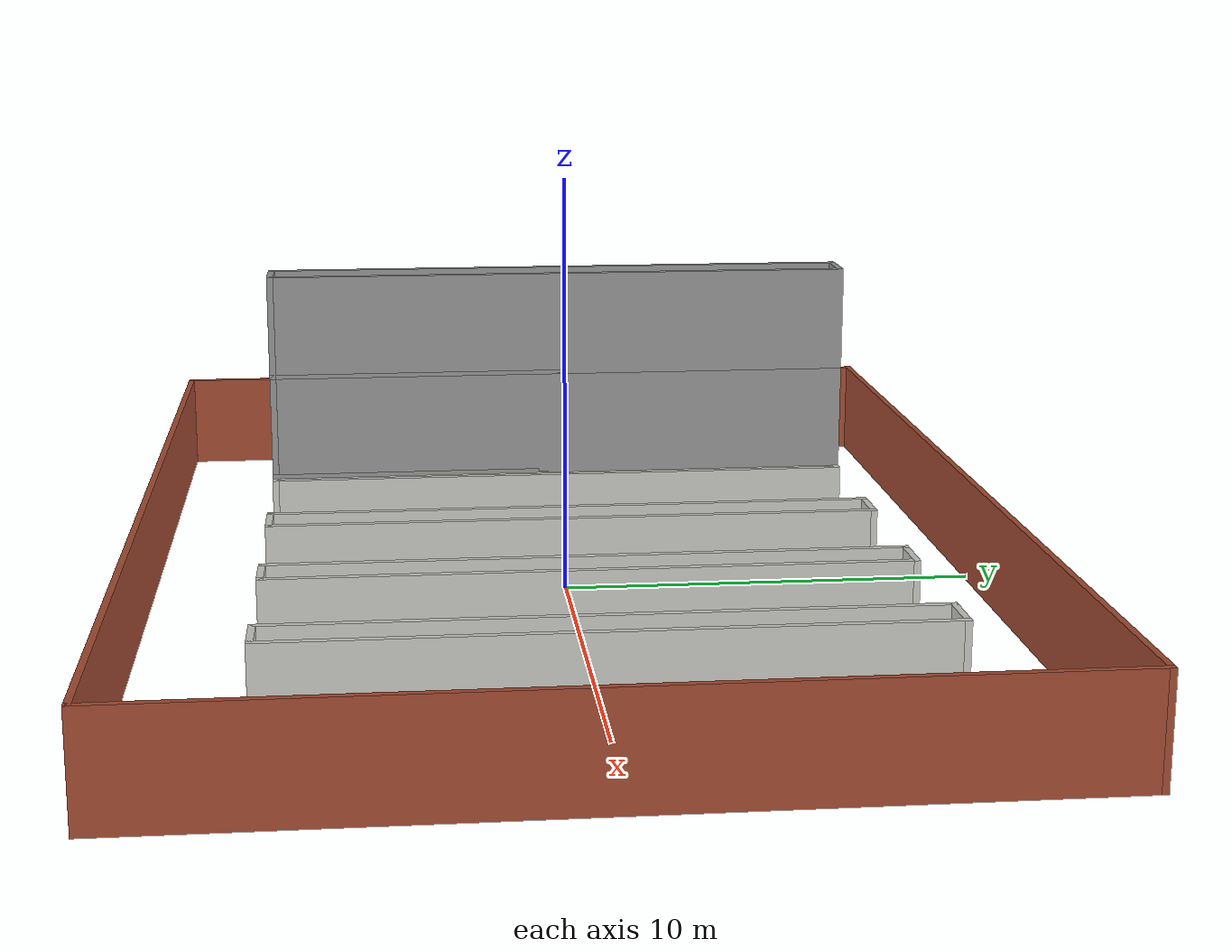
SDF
<?xml version='1.0'?>
<sdf version='1.6'>
  <model name='CommissaryBuilding'>
    <pose frame=''>0 0 0 0 -0 0</pose>
    <link name='Floor_0'>
      <collision name='Floor_0_Collision'>
        <geometry>
          <box>
            <size>1.15 14.15 0.1</size>
          </box>
        </geometry>
        <pose frame=''>0 0 0.05 0 -0 0</pose>
      </collision>
      <visual name='Floor_0_Visual'>
        <pose frame=''>0 0 0.05 0 -0 0</pose>
        <geometry>
          <box>
            <size>1.15 14.15 0.1</size>
          </box>
        </geometry>
        <material>
          <script>
            <uri>file://media/materials/scripts/gazebo.material</uri>
            <name>Gazebo/Grey</name>
          </script>
          <ambient>1 1 1 1</ambient>
        </material>
        <meta>
          <layer>1</layer>
        </meta>
      </visual>
      <pose frame=''>-2.25 0 2.5 0 -0 0</pose>
    </link>
    <link name='Floor_1'>
      <collision name='Floor_1_Collision'>
        <geometry>
          <box>
            <size>1.15 14.15 0.1</size>
          </box>
        </geometry>
        <pose frame=''>0 0 0.05 0 -0 0</pose>
      </collision>
      <visual name='Floor_1_Visual'>
        <pose frame=''>0 0 0.05 0 -0 0</pose>
        <geometry>
          <box>
            <size>1.15 14.15 0.1</size>
          </box>
        </geometry>
        <material>
          <script>
            <uri>file://media/materials/scripts/gazebo.material</uri>
            <name>Gazebo/Grey</name>
          </script>
          <ambient>1 1 1 1</ambient>
        </material>
        <meta>
          <layer>2</layer>
        </meta>
      </visual>
      <pose frame=''>-2.25 0 5 0 -0 0</pose>
    </link>
    <link name='Wall_11'>
      <collision name='Wall_11_Collision'>
        <geometry>
          <box>
            <size>14.15 0.15 2.5</size>
          </box>
        </geometry>
        <pose frame=''>0 0 1.25 0 -0 0</pose>
      </collision>
      <visual name='Wall_11_Visual'>
        <pose frame=''>0 0 1.25 0 -0 0</pose>
        <geometry>
          <box>
            <size>14.15 0.15 2.5</size>
          </box>
        </geometry>
        <material>
          <script>
            <uri>file://media/materials/scripts/gazebo.material</uri>
            <name>Gazebo/CeilingTiled</name>
          </script>
          <ambient>0.921569 0.807843 0.615686 1</ambient>
        </material>
        <meta>
          <layer>0</layer>
        </meta>
      </visual>
      <pose frame=''>-2.5 0 0 0 -0 1.5708</pose>
    </link>
    <link name='Wall_12'>
      <collision name='Wall_12_Collision'>
        <geometry>
          <box>
            <size>1.15 0.15 2.5</size>
          </box>
        </geometry>
        <pose frame=''>0 0 1.25 0 -0 0</pose>
      </collision>
      <visual name='Wall_12_Visual'>
        <pose frame=''>0 0 1.25 0 -0 0</pose>
        <geometry>
          <box>
            <size>1.15 0.15 2.5</size>
          </box>
        </geometry>
        <material>
          <script>
            <uri>file://media/materials/scripts/gazebo.material</uri>
            <name>Gazebo/CeilingTiled</name>
          </script>
          <ambient>0.921569 0.807843 0.615686 1</ambient>
        </material>
        <meta>
          <layer>0</layer>
        </meta>
      </visual>
      <pose frame=''>-2 7 0 0 -0 0</pose>
    </link>
    <link name='Wall_13'>
      <collision name='Wall_13_Collision'>
        <geometry>
          <box>
            <size>14.15 0.15 2.5</size>
          </box>
        </geometry>
        <pose frame=''>0 0 1.25 0 -0 0</pose>
      </collision>
      <visual name='Wall_13_Visual'>
        <pose frame=''>0 0 1.25 0 -0 0</pose>
        <geometry>
          <box>
            <size>14.15 0.15 2.5</size>
          </box>
        </geometry>
        <material>
          <script>
            <uri>file://media/materials/scripts/gazebo.material</uri>
            <name>Gazebo/CeilingTiled</name>
          </script>
          <ambient>0.921569 0.807843 0.615686 1</ambient>
        </material>
        <meta>
          <layer>0</layer>
        </meta>
      </visual>
      <pose frame=''>-1.5 0 0 0 -0 -1.5708</pose>
    </link>
    <link name='Wall_15'>
      <collision name='Wall_15_Collision'>
        <geometry>
          <box>
            <size>1.15 0.15 2.5</size>
          </box>
        </geometry>
        <pose frame=''>0 0 1.25 0 -0 0</pose>
      </collision>
      <visual name='Wall_15_Visual'>
        <pose frame=''>0 0 1.25 0 -0 0</pose>
        <geometry>
          <box>
            <size>1.15 0.15 2.5</size>
          </box>
        </geometry>
        <material>
          <script>
            <uri>file://media/materials/scripts/gazebo.material</uri>
            <name>Gazebo/Grey</name>
          </script>
          <ambient>1 1 1 1</ambient>
        </material>
        <meta>
          <layer>1</layer>
        </meta>
      </visual>
      <pose frame=''>-2.25 -7 2.5 0 -0 3.14159</pose>
    </link>
    <link name='Wall_16'>
      <collision name='Wall_16_Collision'>
        <geometry>
          <box>
            <size>14.15 0.15 2.5</size>
          </box>
        </geometry>
        <pose frame=''>0 0 1.25 0 -0 0</pose>
      </collision>
      <visual name='Wall_16_Visual'>
        <pose frame=''>0 0 1.25 0 -0 0</pose>
        <geometry>
          <box>
            <size>14.15 0.15 2.5</size>
          </box>
        </geometry>
        <material>
          <script>
            <uri>file://media/materials/scripts/gazebo.material</uri>
            <name>Gazebo/Grey</name>
          </script>
          <ambient>1 1 1 1</ambient>
        </material>
        <meta>
          <layer>1</layer>
        </meta>
      </visual>
      <pose frame=''>-2.75 0 2.5 0 -0 1.5708</pose>
    </link>
    <link name='Wall_17'>
      <collision name='Wall_17_Collision'>
        <geometry>
          <box>
            <size>1.15 0.15 2.5</size>
          </box>
        </geometry>
        <pose frame=''>0 0 1.25 0 -0 0</pose>
      </collision>
      <visual name='Wall_17_Visual'>
        <pose frame=''>0 0 1.25 0 -0 0</pose>
        <geometry>
          <box>
            <size>1.15 0.15 2.5</size>
          </box>
        </geometry>
        <material>
          <script>
            <uri>file://media/materials/scripts/gazebo.material</uri>
            <name>Gazebo/Grey</name>
          </script>
          <ambient>1 1 1 1</ambient>
        </material>
        <meta>
          <layer>1</layer>
        </meta>
      </visual>
      <pose frame=''>-2.25 7 2.5 0 -0 0</pose>
    </link>
    <link name='Wall_18'>
      <collision name='Wall_18_Collision'>
        <geometry>
          <box>
            <size>14.15 0.15 2.5</size>
          </box>
        </geometry>
        <pose frame=''>0 0 1.25 0 -0 0</pose>
      </collision>
      <visual name='Wall_18_Visual'>
        <pose frame=''>0 0 1.25 0 -0 0</pose>
        <geometry>
          <box>
            <size>14.15 0.15 2.5</size>
          </box>
        </geometry>
        <material>
          <script>
            <uri>file://media/materials/scripts/gazebo.material</uri>
            <name>Gazebo/Grey</name>
          </script>
          <ambient>1 1 1 1</ambient>
        </material>
        <meta>
          <layer>1</layer>
        </meta>
      </visual>
      <pose frame=''>-1.75 0 2.5 0 -0 -1.5708</pose>
    </link>
    <link name='Wall_19'>
      <collision name='Wall_19_Collision'>
        <geometry>
          <box>
            <size>14.15 0.15 2.5</size>
          </box>
        </geometry>
        <pose frame=''>0 0 1.25 0 -0 0</pose>
      </collision>
      <visual name='Wall_19_Visual'>
        <pose frame=''>0 0 1.25 0 -0 0</pose>
        <geometry>
          <box>
            <size>14.15 0.15 2.5</size>
          </box>
        </geometry>
        <material>
          <script>
            <uri>file://media/materials/scripts/gazebo.material</uri>
            <name>Gazebo/CeilingTiled</name>
          </script>
          <ambient>0.921569 0.807843 0.615686 1</ambient>
        </material>
        <meta>
          <layer>0</layer>
        </meta>
      </visual>
      <pose frame=''>1.5 0 0 0 -0 -1.5708</pose>
    </link>
    <link name='Wall_20'>
      <collision name='Wall_20_Collision'>
        <geometry>
          <box>
            <size>1.15 0.15 2.5</size>
          </box>
        </geometry>
        <pose frame=''>0 0 1.25 0 -0 0</pose>
      </collision>
      <visual name='Wall_20_Visual'>
        <pose frame=''>0 0 1.25 0 -0 0</pose>
        <geometry>
          <box>
            <size>1.15 0.15 2.5</size>
          </box>
        </geometry>
        <material>
          <script>
            <uri>file://media/materials/scripts/gazebo.material</uri>
            <name>Gazebo/CeilingTiled</name>
          </script>
          <ambient>0.921569 0.807843 0.615686 1</ambient>
        </material>
        <meta>
          <layer>0</layer>
        </meta>
      </visual>
      <pose frame=''>2 -7 0 0 -0 0</pose>
    </link>
    <link name='Wall_21'>
      <collision name='Wall_21_Collision'>
        <geometry>
          <box>
            <size>14.15 0.15 2.5</size>
          </box>
        </geometry>
        <pose frame=''>0 0 1.25 0 -0 0</pose>
      </collision>
      <visual name='Wall_21_Visual'>
        <pose frame=''>0 0 1.25 0 -0 0</pose>
        <geometry>
          <box>
            <size>14.15 0.15 2.5</size>
          </box>
        </geometry>
        <material>
          <script>
            <uri>file://media/materials/scripts/gazebo.material</uri>
            <name>Gazebo/CeilingTiled</name>
          </script>
          <ambient>0.921569 0.807843 0.615686 1</ambient>
        </material>
        <meta>
          <layer>0</layer>
        </meta>
      </visual>
      <pose frame=''>2.5 0 0 0 -0 1.5708</pose>
    </link>
    <link name='Wall_22'>
      <collision name='Wall_22_Collision'>
        <geometry>
          <box>
            <size>1.15 0.15 2.5</size>
          </box>
        </geometry>
        <pose frame=''>0 0 1.25 0 -0 0</pose>
      </collision>
      <visual name='Wall_22_Visual'>
        <pose frame=''>0 0 1.25 0 -0 0</pose>
        <geometry>
          <box>
            <size>1.15 0.15 2.5</size>
          </box>
        </geometry>
        <material>
          <script>
            <uri>file://media/materials/scripts/gazebo.material</uri>
            <name>Gazebo/CeilingTiled</name>
          </script>
          <ambient>0.921569 0.807843 0.615686 1</ambient>
        </material>
        <meta>
          <layer>0</layer>
        </meta>
      </visual>
      <pose frame=''>2 7 0 0 -0 3.14159</pose>
    </link>
    <link name='Wall_24'>
      <collision name='Wall_24_Collision'>
        <geometry>
          <box>
            <size>14.15 0.15 2.5</size>
          </box>
        </geometry>
        <pose frame=''>0 0 1.25 0 -0 0</pose>
      </collision>
      <visual name='Wall_24_Visual'>
        <pose frame=''>0 0 1.25 0 -0 0</pose>
        <geometry>
          <box>
            <size>14.15 0.15 2.5</size>
          </box>
        </geometry>
        <material>
          <script>
            <uri>file://media/materials/scripts/gazebo.material</uri>
            <name>Gazebo/CeilingTiled</name>
          </script>
          <ambient>0.921569 0.807843 0.615686 1</ambient>
        </material>
        <meta>
          <layer>0</layer>
        </meta>
      </visual>
      <pose frame=''>5.5 0 0 0 -0 -1.5708</pose>
    </link>
    <link name='Wall_25'>
      <collision name='Wall_25_Collision'>
        <geometry>
          <box>
            <size>1.15 0.15 2.5</size>
          </box>
        </geometry>
        <pose frame=''>0 0 1.25 0 -0 0</pose>
      </collision>
      <visual name='Wall_25_Visual'>
        <pose frame=''>0 0 1.25 0 -0 0</pose>
        <geometry>
          <box>
            <size>1.15 0.15 2.5</size>
          </box>
        </geometry>
        <material>
          <script>
            <uri>file://media/materials/scripts/gazebo.material</uri>
            <name>Gazebo/CeilingTiled</name>
          </script>
          <ambient>0.921569 0.807843 0.615686 1</ambient>
        </material>
        <meta>
          <layer>0</layer>
        </meta>
      </visual>
      <pose frame=''>6 -7 0 0 -0 0</pose>
    </link>
    <link name='Wall_26'>
      <collision name='Wall_26_Collision'>
        <geometry>
          <box>
            <size>14.15 0.15 2.5</size>
          </box>
        </geometry>
        <pose frame=''>0 0 1.25 0 -0 0</pose>
      </collision>
      <visual name='Wall_26_Visual'>
        <pose frame=''>0 0 1.25 0 -0 0</pose>
        <geometry>
          <box>
            <size>14.15 0.15 2.5</size>
          </box>
        </geometry>
        <material>
          <script>
            <uri>file://media/materials/scripts/gazebo.material</uri>
            <name>Gazebo/CeilingTiled</name>
          </script>
          <ambient>0.921569 0.807843 0.615686 1</ambient>
        </material>
        <meta>
          <layer>0</layer>
        </meta>
      </visual>
      <pose frame=''>6.5 0 0 0 -0 1.5708</pose>
    </link>
    <link name='Wall_27'>
      <collision name='Wall_27_Collision'>
        <geometry>
          <box>
            <size>1.15 0.15 2.5</size>
          </box>
        </geometry>
        <pose frame=''>0 0 1.25 0 -0 0</pose>
      </collision>
      <visual name='Wall_27_Visual'>
        <pose frame=''>0 0 1.25 0 -0 0</pose>
        <geometry>
          <box>
            <size>1.15 0.15 2.5</size>
          </box>
        </geometry>
        <material>
          <script>
            <uri>file://media/materials/scripts/gazebo.material</uri>
            <name>Gazebo/CeilingTiled</name>
          </script>
          <ambient>0.921569 0.807843 0.615686 1</ambient>
        </material>
        <meta>
          <layer>0</layer>
        </meta>
      </visual>
      <pose frame=''>6 7 0 0 -0 3.14159</pose>
    </link>
    <link name='Wall_29'>
      <collision name='Wall_29_Collision'>
        <geometry>
          <box>
            <size>14.15 0.15 2.5</size>
          </box>
        </geometry>
        <pose frame=''>0 0 1.25 0 -0 0</pose>
      </collision>
      <visual name='Wall_29_Visual'>
        <pose frame=''>0 0 1.25 0 -0 0</pose>
        <geometry>
          <box>
            <size>14.15 0.15 2.5</size>
          </box>
        </geometry>
        <material>
          <script>
            <uri>file://media/materials/scripts/gazebo.material</uri>
            <name>Gazebo/CeilingTiled</name>
          </script>
          <ambient>0.921569 0.807843 0.615686 1</ambient>
        </material>
        <meta>
          <layer>0</layer>
        </meta>
      </visual>
      <pose frame=''>9.5 0 0 0 -0 -1.5708</pose>
    </link>
    <link name='Wall_30'>
      <collision name='Wall_30_Collision'>
        <geometry>
          <box>
            <size>1.15 0.15 2.5</size>
          </box>
        </geometry>
        <pose frame=''>0 0 1.25 0 -0 0</pose>
      </collision>
      <visual name='Wall_30_Visual'>
        <pose frame=''>0 0 1.25 0 -0 0</pose>
        <geometry>
          <box>
            <size>1.15 0.15 2.5</size>
          </box>
        </geometry>
        <material>
          <script>
            <uri>file://media/materials/scripts/gazebo.material</uri>
            <name>Gazebo/CeilingTiled</name>
          </script>
          <ambient>0.921569 0.807843 0.615686 1</ambient>
        </material>
        <meta>
          <layer>0</layer>
        </meta>
      </visual>
      <pose frame=''>10 -7 0 0 -0 0</pose>
    </link>
    <link name='Wall_31'>
      <collision name='Wall_31_Collision'>
        <geometry>
          <box>
            <size>14.15 0.15 2.5</size>
          </box>
        </geometry>
        <pose frame=''>0 0 1.25 0 -0 0</pose>
      </collision>
      <visual name='Wall_31_Visual'>
        <pose frame=''>0 0 1.25 0 -0 0</pose>
        <geometry>
          <box>
            <size>14.15 0.15 2.5</size>
          </box>
        </geometry>
        <material>
          <script>
            <uri>file://media/materials/scripts/gazebo.material</uri>
            <name>Gazebo/CeilingTiled</name>
          </script>
          <ambient>0.921569 0.807843 0.615686 1</ambient>
        </material>
        <meta>
          <layer>0</layer>
        </meta>
      </visual>
      <pose frame=''>10.5 0 0 0 -0 1.5708</pose>
    </link>
    <link name='Wall_32'>
      <collision name='Wall_32_Collision'>
        <geometry>
          <box>
            <size>1.15 0.15 2.5</size>
          </box>
        </geometry>
        <pose frame=''>0 0 1.25 0 -0 0</pose>
      </collision>
      <visual name='Wall_32_Visual'>
        <pose frame=''>0 0 1.25 0 -0 0</pose>
        <geometry>
          <box>
            <size>1.15 0.15 2.5</size>
          </box>
        </geometry>
        <material>
          <script>
            <uri>file://media/materials/scripts/gazebo.material</uri>
            <name>Gazebo/CeilingTiled</name>
          </script>
          <ambient>0.921569 0.807843 0.615686 1</ambient>
        </material>
        <meta>
          <layer>0</layer>
        </meta>
      </visual>
      <pose frame=''>10 7 0 0 -0 3.14159</pose>
    </link>
    <link name='Wall_34'>
      <collision name='Wall_34_Collision'>
        <geometry>
          <box>
            <size>14.15 0.15 2.5</size>
          </box>
        </geometry>
        <pose frame=''>0 0 1.25 0 -0 0</pose>
      </collision>
      <visual name='Wall_34_Visual'>
        <pose frame=''>0 0 1.25 0 -0 0</pose>
        <geometry>
          <box>
            <size>14.15 0.15 2.5</size>
          </box>
        </geometry>
        <material>
          <script>
            <uri>file://media/materials/scripts/gazebo.material</uri>
            <name>Gazebo/CeilingTiled</name>
          </script>
          <ambient>0.921569 0.807843 0.615686 1</ambient>
        </material>
        <meta>
          <layer>0</layer>
        </meta>
      </visual>
      <pose frame=''>-5.5 0 0 0 -0 -1.5708</pose>
    </link>
    <link name='Wall_35'>
      <collision name='Wall_35_Collision'>
        <geometry>
          <box>
            <size>1.15 0.15 2.5</size>
          </box>
        </geometry>
        <pose frame=''>0 0 1.25 0 -0 0</pose>
      </collision>
      <visual name='Wall_35_Visual'>
        <pose frame=''>0 0 1.25 0 -0 0</pose>
        <geometry>
          <box>
            <size>1.15 0.15 2.5</size>
          </box>
        </geometry>
        <material>
          <script>
            <uri>file://media/materials/scripts/gazebo.material</uri>
            <name>Gazebo/CeilingTiled</name>
          </script>
          <ambient>0.921569 0.807843 0.615686 1</ambient>
        </material>
        <meta>
          <layer>0</layer>
        </meta>
      </visual>
      <pose frame=''>-6 -7 0 0 -0 3.14159</pose>
    </link>
    <link name='Wall_36'>
      <collision name='Wall_36_Collision'>
        <geometry>
          <box>
            <size>14.15 0.15 2.5</size>
          </box>
        </geometry>
        <pose frame=''>0 0 1.25 0 -0 0</pose>
      </collision>
      <visual name='Wall_36_Visual'>
        <pose frame=''>0 0 1.25 0 -0 0</pose>
        <geometry>
          <box>
            <size>14.15 0.15 2.5</size>
          </box>
        </geometry>
        <material>
          <script>
            <uri>file://media/materials/scripts/gazebo.material</uri>
            <name>Gazebo/CeilingTiled</name>
          </script>
          <ambient>0.921569 0.807843 0.615686 1</ambient>
        </material>
        <meta>
          <layer>0</layer>
        </meta>
      </visual>
      <pose frame=''>-6.5 0 0 0 -0 1.5708</pose>
    </link>
    <link name='Wall_37'>
      <collision name='Wall_37_Collision'>
        <geometry>
          <box>
            <size>1.15 0.15 2.5</size>
          </box>
        </geometry>
        <pose frame=''>0 0 1.25 0 -0 0</pose>
      </collision>
      <visual name='Wall_37_Visual'>
        <pose frame=''>0 0 1.25 0 -0 0</pose>
        <geometry>
          <box>
            <size>1.15 0.15 2.5</size>
          </box>
        </geometry>
        <material>
          <script>
            <uri>file://media/materials/scripts/gazebo.material</uri>
            <name>Gazebo/CeilingTiled</name>
          </script>
          <ambient>0.921569 0.807843 0.615686 1</ambient>
        </material>
        <meta>
          <layer>0</layer>
        </meta>
      </visual>
      <pose frame=''>-6 7 0 0 -0 0</pose>
    </link>
    <link name='Wall_39'>
      <collision name='Wall_39_Collision'>
        <geometry>
          <box>
            <size>14.15 0.15 2.5</size>
          </box>
        </geometry>
        <pose frame=''>0 0 1.25 0 -0 0</pose>
      </collision>
      <visual name='Wall_39_Visual'>
        <pose frame=''>0 0 1.25 0 -0 0</pose>
        <geometry>
          <box>
            <size>14.15 0.15 2.5</size>
          </box>
        </geometry>
        <material>
          <script>
            <uri>file://media/materials/scripts/gazebo.material</uri>
            <name>Gazebo/CeilingTiled</name>
          </script>
          <ambient>0.921569 0.807843 0.615686 1</ambient>
        </material>
        <meta>
          <layer>0</layer>
        </meta>
      </visual>
      <pose frame=''>-9.5 0 0 0 -0 -1.5708</pose>
    </link>
    <link name='Wall_40'>
      <collision name='Wall_40_Collision'>
        <geometry>
          <box>
            <size>1.15 0.15 2.5</size>
          </box>
        </geometry>
        <pose frame=''>0 0 1.25 0 -0 0</pose>
      </collision>
      <visual name='Wall_40_Visual'>
        <pose frame=''>0 0 1.25 0 -0 0</pose>
        <geometry>
          <box>
            <size>1.15 0.15 2.5</size>
          </box>
        </geometry>
        <material>
          <script>
            <uri>file://media/materials/scripts/gazebo.material</uri>
            <name>Gazebo/CeilingTiled</name>
          </script>
          <ambient>0.921569 0.807843 0.615686 1</ambient>
        </material>
        <meta>
          <layer>0</layer>
        </meta>
      </visual>
      <pose frame=''>-10 -7 0 0 -0 3.14159</pose>
    </link>
    <link name='Wall_41'>
      <collision name='Wall_41_Collision'>
        <geometry>
          <box>
            <size>14.15 0.15 2.5</size>
          </box>
        </geometry>
        <pose frame=''>0 0 1.25 0 -0 0</pose>
      </collision>
      <visual name='Wall_41_Visual'>
        <pose frame=''>0 0 1.25 0 -0 0</pose>
        <geometry>
          <box>
            <size>14.15 0.15 2.5</size>
          </box>
        </geometry>
        <material>
          <script>
            <uri>file://media/materials/scripts/gazebo.material</uri>
            <name>Gazebo/CeilingTiled</name>
          </script>
          <ambient>0.921569 0.807843 0.615686 1</ambient>
        </material>
        <meta>
          <layer>0</layer>
        </meta>
      </visual>
      <pose frame=''>-10.5 0 0 0 -0 1.5708</pose>
    </link>
    <link name='Wall_42'>
      <collision name='Wall_42_Collision'>
        <geometry>
          <box>
            <size>1.15 0.15 2.5</size>
          </box>
        </geometry>
        <pose frame=''>0 0 1.25 0 -0 0</pose>
      </collision>
      <visual name='Wall_42_Visual'>
        <pose frame=''>0 0 1.25 0 -0 0</pose>
        <geometry>
          <box>
            <size>1.15 0.15 2.5</size>
          </box>
        </geometry>
        <material>
          <script>
            <uri>file://media/materials/scripts/gazebo.material</uri>
            <name>Gazebo/CeilingTiled</name>
          </script>
          <ambient>0.921569 0.807843 0.615686 1</ambient>
        </material>
        <meta>
          <layer>0</layer>
        </meta>
      </visual>
      <pose frame=''>-10 7 0 0 -0 0</pose>
    </link>
    <link name='Wall_44'>
      <collision name='Wall_44_Collision'>
        <geometry>
          <box>
            <size>27.15 0.15 2.5</size>
          </box>
        </geometry>
        <pose frame=''>0 0 1.25 0 -0 0</pose>
      </collision>
      <visual name='Wall_44_Visual'>
        <pose frame=''>0 0 1.25 0 -0 0</pose>
        <geometry>
          <box>
            <size>27.15 0.15 2.5</size>
          </box>
        </geometry>
        <material>
          <script>
            <uri>file://media/materials/scripts/gazebo.material</uri>
            <name>Gazebo/Bricks</name>
          </script>
          <ambient>1 1 1 1</ambient>
        </material>
        <meta>
          <layer>0</layer>
        </meta>
      </visual>
      <pose frame=''>0 -10 0 0 -0 0</pose>
    </link>
    <link name='Wall_45'>
      <collision name='Wall_45_Collision'>
        <geometry>
          <box>
            <size>20.15 0.15 2.5</size>
          </box>
        </geometry>
        <pose frame=''>0 0 1.25 0 -0 0</pose>
      </collision>
      <visual name='Wall_45_Visual'>
        <pose frame=''>0 0 1.25 0 -0 0</pose>
        <geometry>
          <box>
            <size>20.15 0.15 2.5</size>
          </box>
        </geometry>
        <material>
          <script>
            <uri>file://media/materials/scripts/gazebo.material</uri>
            <name>Gazebo/Bricks</name>
          </script>
          <ambient>1 1 1 1</ambient>
        </material>
        <meta>
          <layer>0</layer>
        </meta>
      </visual>
      <pose frame=''>13.5 0 0 0 -0 1.5708</pose>
    </link>
    <link name='Wall_46'>
      <collision name='Wall_46_Collision'>
        <geometry>
          <box>
            <size>27.15 0.15 2.5</size>
          </box>
        </geometry>
        <pose frame=''>0 0 1.25 0 -0 0</pose>
      </collision>
      <visual name='Wall_46_Visual'>
        <pose frame=''>0 0 1.25 0 -0 0</pose>
        <geometry>
          <box>
            <size>27.15 0.15 2.5</size>
          </box>
        </geometry>
        <material>
          <script>
            <uri>file://media/materials/scripts/gazebo.material</uri>
            <name>Gazebo/Bricks</name>
          </script>
          <ambient>1 1 1 1</ambient>
        </material>
        <meta>
          <layer>0</layer>
        </meta>
      </visual>
      <pose frame=''>0 10 0 0 -0 3.14159</pose>
    </link>
    <link name='Wall_47'>
      <collision name='Wall_47_Collision'>
        <geometry>
          <box>
            <size>20.15 0.15 2.5</size>
          </box>
        </geometry>
        <pose frame=''>0 0 1.25 0 -0 0</pose>
      </collision>
      <visual name='Wall_47_Visual'>
        <pose frame=''>0 0 1.25 0 -0 0</pose>
        <geometry>
          <box>
            <size>20.15 0.15 2.5</size>
          </box>
        </geometry>
        <material>
          <script>
            <uri>file://media/materials/scripts/gazebo.material</uri>
            <name>Gazebo/Bricks</name>
          </script>
          <ambient>1 1 1 1</ambient>
        </material>
        <meta>
          <layer>0</layer>
        </meta>
      </visual>
      <pose frame=''>-13.5 0 0 0 -0 -1.5708</pose>
    </link>
    <link name='Wall_49'>
      <collision name='Wall_49_Collision'>
        <geometry>
          <box>
            <size>1.15 0.15 2.5</size>
          </box>
        </geometry>
        <pose frame=''>0 0 1.25 0 -0 0</pose>
      </collision>
      <visual name='Wall_49_Visual'>
        <pose frame=''>0 0 1.25 0 -0 0</pose>
        <geometry>
          <box>
            <size>1.15 0.15 2.5</size>
          </box>
        </geometry>
        <material>
          <script>
            <uri>file://media/materials/scripts/gazebo.material</uri>
            <name>Gazebo/Grey</name>
          </script>
          <ambient>1 1 1 1</ambient>
        </material>
        <meta>
          <layer>2</layer>
        </meta>
      </visual>
      <pose frame=''>-2.25 -7 5 0 -0 3.14159</pose>
    </link>
    <link name='Wall_50'>
      <collision name='Wall_50_Collision'>
        <geometry>
          <box>
            <size>14.15 0.15 2.5</size>
          </box>
        </geometry>
        <pose frame=''>0 0 1.25 0 -0 0</pose>
      </collision>
      <visual name='Wall_50_Visual'>
        <pose frame=''>0 0 1.25 0 -0 0</pose>
        <geometry>
          <box>
            <size>14.15 0.15 2.5</size>
          </box>
        </geometry>
        <material>
          <script>
            <uri>file://media/materials/scripts/gazebo.material</uri>
            <name>Gazebo/Grey</name>
          </script>
          <ambient>1 1 1 1</ambient>
        </material>
        <meta>
          <layer>2</layer>
        </meta>
      </visual>
      <pose frame=''>-2.75 0 5 0 -0 1.5708</pose>
    </link>
    <link name='Wall_51'>
      <collision name='Wall_51_Collision'>
        <geometry>
          <box>
            <size>1.15 0.15 2.5</size>
          </box>
        </geometry>
        <pose frame=''>0 0 1.25 0 -0 0</pose>
      </collision>
      <visual name='Wall_51_Visual'>
        <pose frame=''>0 0 1.25 0 -0 0</pose>
        <geometry>
          <box>
            <size>1.15 0.15 2.5</size>
          </box>
        </geometry>
        <material>
          <script>
            <uri>file://media/materials/scripts/gazebo.material</uri>
            <name>Gazebo/Grey</name>
          </script>
          <ambient>1 1 1 1</ambient>
        </material>
        <meta>
          <layer>2</layer>
        </meta>
      </visual>
      <pose frame=''>-2.25 7 5 0 -0 0</pose>
    </link>
    <link name='Wall_52'>
      <collision name='Wall_52_Collision'>
        <geometry>
          <box>
            <size>14.15 0.15 2.5</size>
          </box>
        </geometry>
        <pose frame=''>0 0 1.25 0 -0 0</pose>
      </collision>
      <visual name='Wall_52_Visual'>
        <pose frame=''>0 0 1.25 0 -0 0</pose>
        <geometry>
          <box>
            <size>14.15 0.15 2.5</size>
          </box>
        </geometry>
        <material>
          <script>
            <uri>file://media/materials/scripts/gazebo.material</uri>
            <name>Gazebo/Grey</name>
          </script>
          <ambient>1 1 1 1</ambient>
        </material>
        <meta>
          <layer>2</layer>
        </meta>
      </visual>
      <pose frame=''>-1.75 0 5 0 -0 -1.5708</pose>
    </link>
    <link name='Wall_9'>
      <collision name='Wall_9_Collision'>
        <geometry>
          <box>
            <size>1.15 0.15 2.5</size>
          </box>
        </geometry>
        <pose frame=''>0 0 1.25 0 -0 0</pose>
      </collision>
      <visual name='Wall_9_Visual'>
        <pose frame=''>0 0 1.25 0 -0 0</pose>
        <geometry>
          <box>
            <size>1.15 0.15 2.5</size>
          </box>
        </geometry>
        <material>
          <script>
            <uri>file://media/materials/scripts/gazebo.material</uri>
            <name>Gazebo/CeilingTiled</name>
          </script>
          <ambient>0.921569 0.807843 0.615686 1</ambient>
        </material>
        <meta>
          <layer>0</layer>
        </meta>
      </visual>
      <pose frame=''>-2 -7 0 0 -0 3.14159</pose>
    </link>
    <static>1</static>
  </model>
</sdf>
